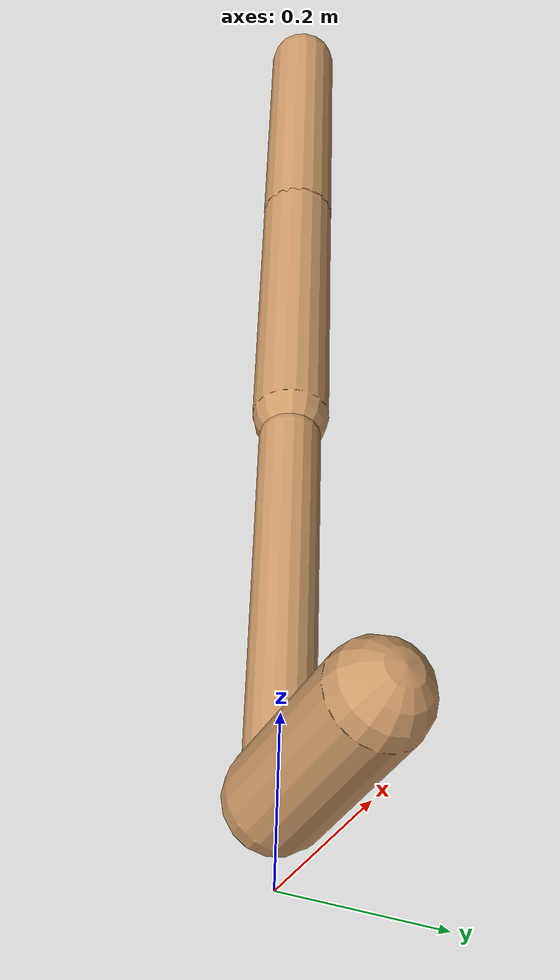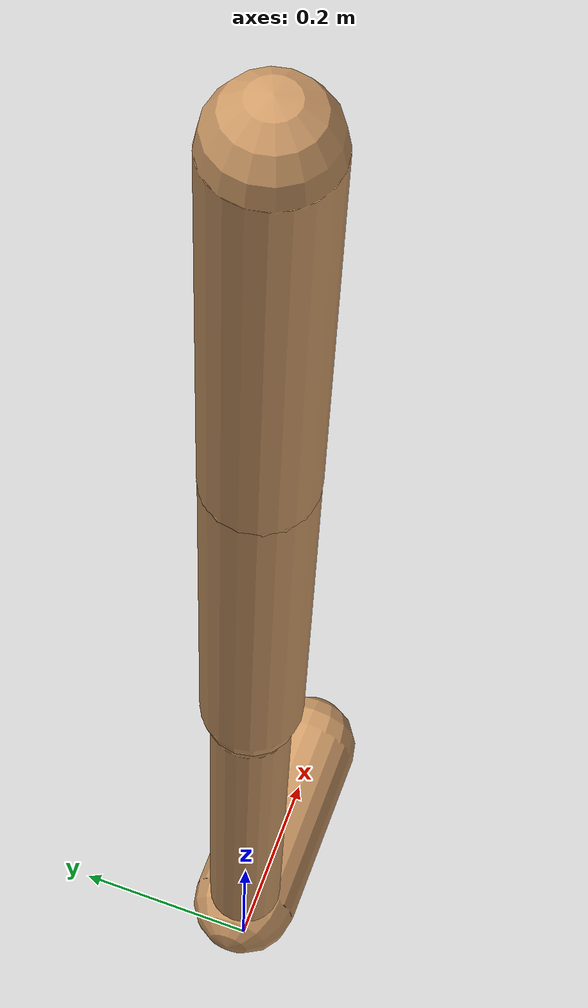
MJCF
<mujoco model="walker2d">
  <compiler angle="degree" coordinate="global" inertiafromgeom="true" />
  <default>
    <joint armature="0.01" damping=".1" limited="true" />
    <geom conaffinity="0" condim="3" contype="1" density="1000" friction="0.8 .1 .1" rgba="0.8 0.6 .4 1" />
  </default>
  <option integrator="RK4" timestep="0.002" />
  <worldbody>

    <body name="torso" pos="0 0 -0.08156248174258038">
      <joint armature="0" axis="1 0 0" damping="0" limited="false" name="ignorex" pos="0 0 0" stiffness="0" type="slide" />
      <joint armature="0" axis="0 0 1" damping="0" limited="false" name="ignorez" pos="0 0 0" ref="1.25" stiffness="0" type="slide" />
      <joint armature="0" axis="0 1 0" damping="0" limited="false" name="ignorey" pos="0 0 0" stiffness="0" type="hinge" />
      <geom fromto="0 0 1.45 0 0 1.05" name="torso_geom" size="0.050027289393397824" type="capsule" />
      <body name="thigh">
        <joint axis="0 -1 0" name="thigh_joint" pos="0 0 1.05" range="-150 0" type="hinge" />
        <geom fromto="0.0 0.0 1.05 0.0 0.0 0.6386348597728012" name="thigh_geom" size="0.049551359435494435" type="capsule" />
        <body name="leg" pos="0.0 0.0 0.03863485977280123">
          <joint axis="0 -1 0" name="leg_joint" pos="0 0 0.6" range="-150 0" type="hinge" />
          <geom fromto="0.0 0.0 0.6 0.0 0.0 0.14292762196977915" name="leg_geom" size="0.03964108754839555" type="capsule" />
          <body name="foot" pos="0.0 0.0 0.042927621969779145">
            <joint axis="0 -1 0" name="foot_joint" pos="0 0 0.1" range="-45 45" type="hinge" />
            <geom fromto="-0.0 0.0 0.1 0.21366565971214124 0.0 0.1" name="foot_geom" size="0.058965025055296355" type="capsule" />
          </body>
        </body>
      </body>

      <body name="thigh_left">
        <joint axis="0 -1 0" name="thigh_left_joint" pos="0 0 1.05" range="-150 0" type="hinge" />
        <geom fromto="0.0 0.0 1.05 0.0 0.0 0.6386348597728012" name="thigh_left_geom" rgba=".7 .3 .6 1" size="0.049551359435494435" type="capsule" />
        <body name="leg_left" pos="0.0 0.0 0.03863485977280123">
          <joint axis="0 -1 0" name="leg_left_joint" pos="0 0 0.6" range="-150 0" type="hinge" />
          <geom fromto="0.0 0.0 0.6 0.0 0.0 0.14292762196977915" name="leg_left_geom" rgba=".7 .3 .6 1" size="0.03964108754839555" type="capsule" />
          <body name="foot_left" pos="0.0 0.0 0.042927621969779145">
            <joint axis="0 -1 0" name="foot_left_joint" pos="0 0 0.1" range="-45 45" type="hinge" />
            <geom fromto="-0.0 0.0 0.1 0.21366565971214124 0.0 0.1" name="foot_left_geom" rgba=".7 .3 .6 1" size="0.058965025055296355" type="capsule" />
          </body>
        </body>
      </body>
    </body>
  </worldbody>
  <actuator>

    <motor ctrllimited="true" ctrlrange="-1.0 1.0" gear="100" joint="thigh_joint" />
    <motor ctrllimited="true" ctrlrange="-1.0 1.0" gear="100" joint="leg_joint" />
    <motor ctrllimited="true" ctrlrange="-1.0 1.0" gear="100" joint="foot_joint" />
    <motor ctrllimited="true" ctrlrange="-1.0 1.0" gear="100" joint="thigh_left_joint" />
    <motor ctrllimited="true" ctrlrange="-1.0 1.0" gear="100" joint="leg_left_joint" />
    <motor ctrllimited="true" ctrlrange="-1.0 1.0" gear="100" joint="foot_left_joint" />

  </actuator>
</mujoco>
